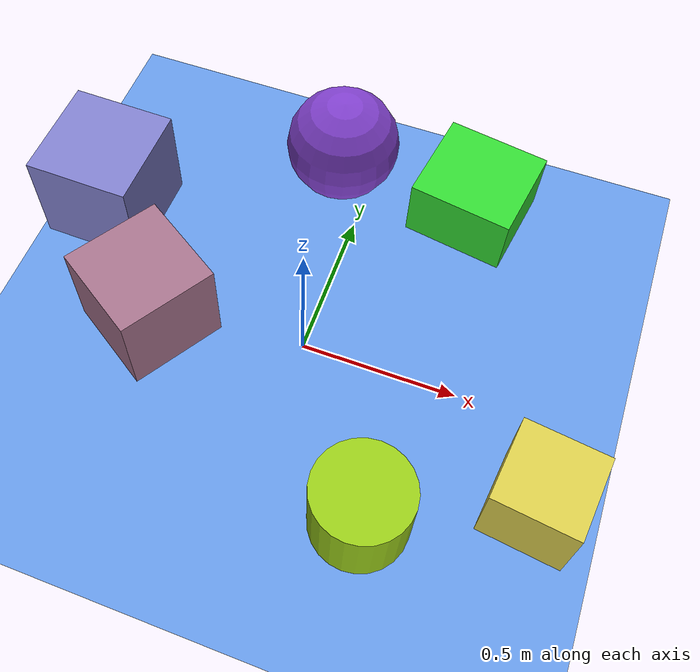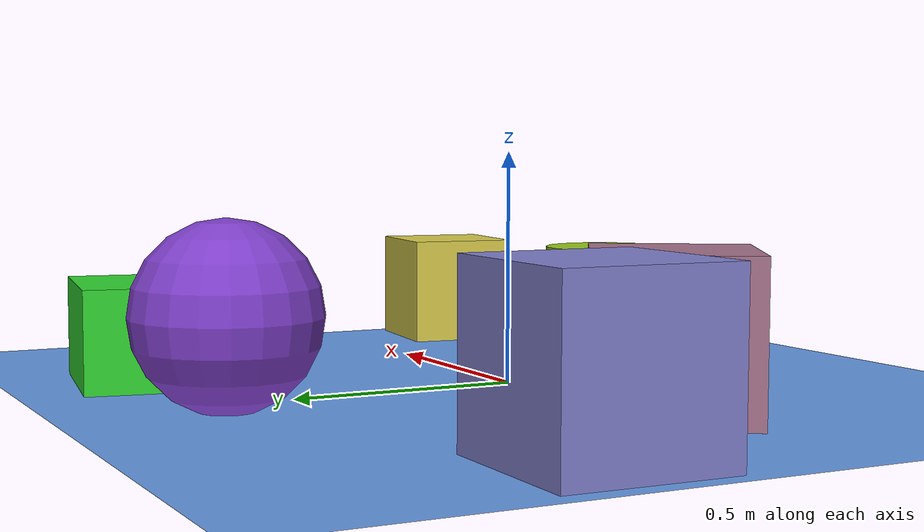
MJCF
<mujoco>
   <asset>
<texture type="skybox" builtin="gradient" rgb1="0.5 0.7 0.8" rgb2="0.0 0.8 0.8" width="500" height="500"/>
<texture name="checker_0" builtin="checker" rgb1="0.7 0.3 0.4" rgb2="0.6 0.6 0.7" width="500" height="500"/>
<texture name="flat_1" builtin="flat" rgb1="0.6 0.8 0.1" rgb2="0.6 0.8 0.1"  width="500" height="500"/>
<texture name="checker_2" builtin="checker" rgb1="0.5 0.5 0.8" rgb2="0.5 0.5 0.8" width="500" height="500"/>
<texture name="gradient_3" builtin="gradient" rgb1="0.7 0.1 1.0" rgb2="0.3 0.4 0.6" width="500" height="500"/>
<texture name="gradient_4" builtin="gradient" rgb1="0.3 0.9 0.1" rgb2="0.1 0.8 0.3" width="500" height="500"/>
<texture name="gradient_5" builtin="gradient" rgb1="1.0 0.7 0.6" rgb2="0.7 0.9 0.0" width="500" height="500"/><material name="checker_0_mat" reflectance="0.25705130820503963" texrepeat="9 9" texture="checker_0" texuniform="false" />
<material name="flat_1_mat" reflectance="0.38278467346791867" texture="flat_1" texuniform="true"/>
<material name="checker_2_mat" reflectance="0.29504607199660693" texrepeat="8 8" texture="checker_2" texuniform="false" />
<material name="gradient_3_mat" reflectance="0.4744507745512814" texture="gradient_3" texuniform="true"/>
<material name="gradient_4_mat" reflectance="0.6422052305775151" texture="gradient_4" texuniform="true"/>
<material name="gradient_5_mat" reflectance="0.6906787967215905" texture="gradient_5" texuniform="true"/>
   </asset>

   <worldbody>
     <geom type="plane" size="1 1 0.1" rgba="0.4 0.6 0.9 1" />
<light pos="-0.7518877710729903 0.11442100497560381 2" dir="0 0 -1" cutoff="90" diffuse="1 1 1" specular="1 1 1"/>
<light pos="0.8773598536938243 -0.8708302532444969 2" dir="0 0 -1" cutoff="90" diffuse="1 1 1" specular="1 1 1"/>
<geom type="box" pos="-0.49 -0.08 0.16" size="0.16 0.16 0.16" material="checker_0_mat" euler="0 0 58" />
<geom type="cylinder" pos="0.35 -0.48 0.13" size="0.15 0.13 0.13" material="flat_1_mat" euler="0 0 45" />
<geom type="box" pos="-0.8 0.29 0.17" size="0.17 0.17 0.17" material="checker_2_mat" euler="0 0 89" />
<geom type="sphere" pos="-0.11 0.68 0.19" size="0.19 0.19 0.19" material="gradient_3_mat" euler="0 0 73" />
<geom type="box" pos="0.36 0.69 0.11" size="0.16 0.17 0.11" material="gradient_4_mat" euler="0 0 81" />
<geom type="box" pos="0.81 -0.27 0.13" size="0.13 0.13 0.13" material="gradient_5_mat" euler="0 0 83" /><camera euler="60 0 180" fovy="60" name="camera1" pos="-0.2 -1.5 1"></camera>   </worldbody>
   <visual>
      <headlight diffuse="0.7 0.7 0.7"/>
   </visual>
</mujoco>
